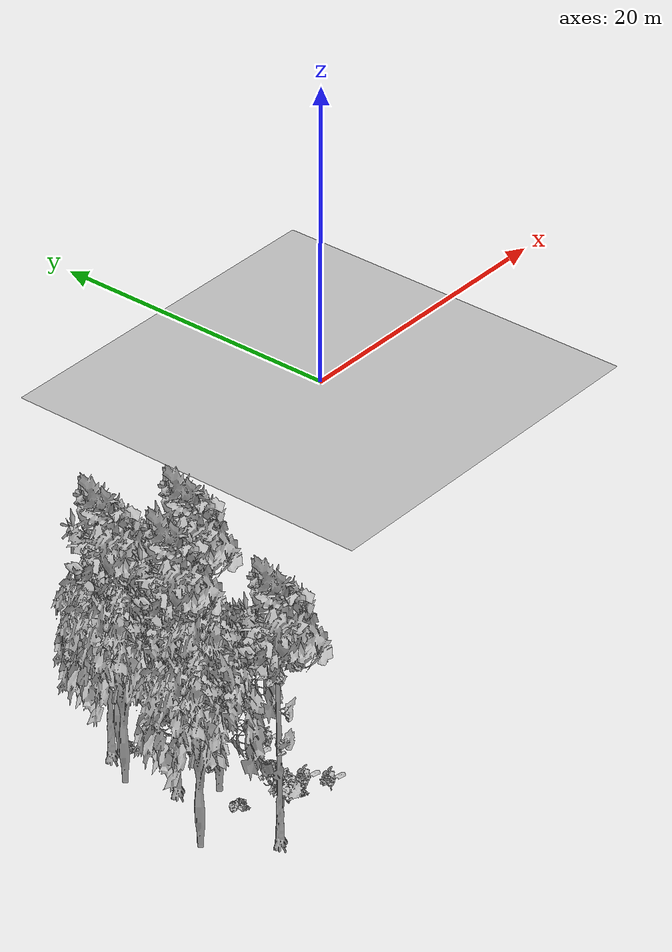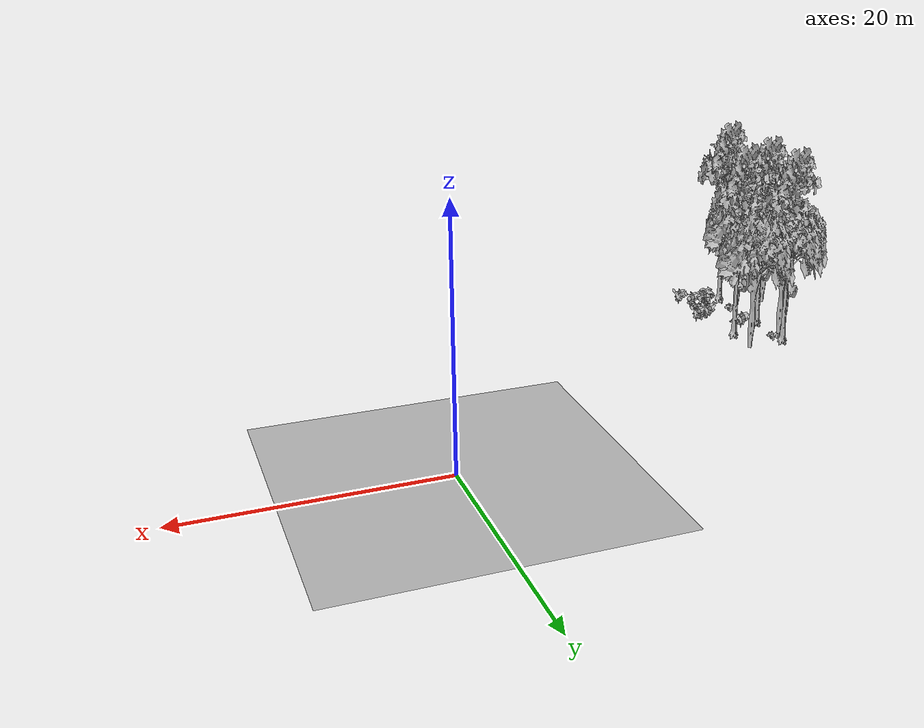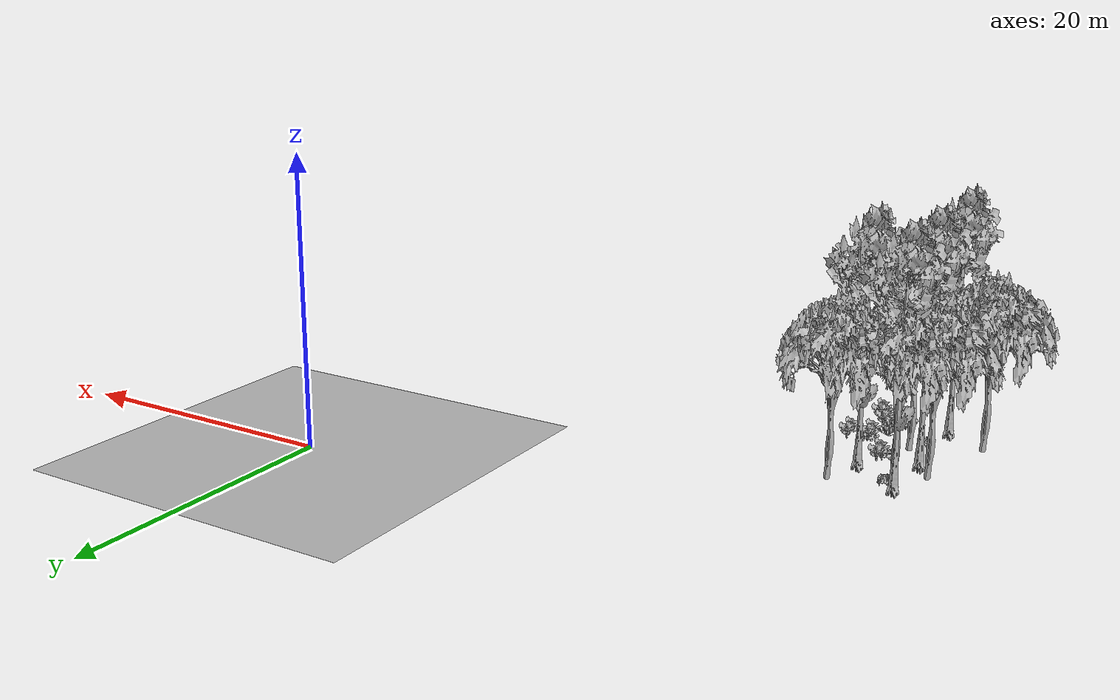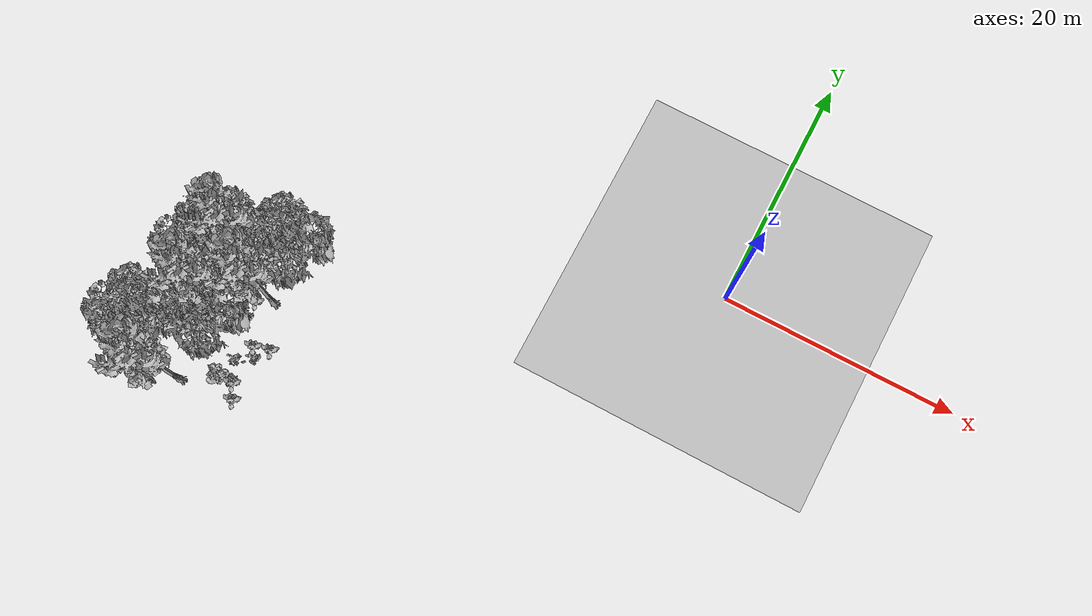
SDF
<sdf version="1.7">
 <world name="default">
  <model name="ground_plane">
   <static>1</static>
   <link name="link">
    <collision name="collision">
     <pose>-50 0 0 0 -0 0</pose>
     <geometry><plane><normal>0 0 1</normal><size>80 80</size></plane></geometry>
     <surface><contact><ode><min_depth>0.01</min_depth><max_vel>0</max_vel></ode></contact></surface>
    </collision>
    <visual name="grass">
     <cast_shadows>0</cast_shadows>
     <geometry>
      <mesh>
       <scale>0.46714285714285714 0.46714285714285714 0.1</scale>
       <uri>file://grass_plane/meshes/grass_plane.dae</uri>
      </mesh>
     </geometry>
    </visual>
   </link>
  </model>
  <model name="Tree 99">
   <static>1</static>
   <pose>-38.54059134746807 -23.495840534642667 0 1.57079 -0 0</pose>
   <link name="link">
    <collision name="collision">
     <geometry><mesh><scale>3.5 5 3.5</scale><uri>model://tree_2/meshes/tree_2.obj</uri></mesh></geometry>
    </collision>
    <visual name="visual">
     <geometry><mesh><scale>3.5 5 3.5</scale><uri>model://tree_2/meshes/tree_2.obj</uri></mesh></geometry>
    </visual>
   </link>
  </model>
  <model name="Tree 106">
   <static>1</static>
   <pose>-31.954167852705275 -17.431816246076863 0 1.57079 -0 0</pose>
   <link name="link">
    <collision name="collision">
     <geometry><mesh><scale>3.5 5 3.5</scale><uri>model://tree_9/meshes/tree_9.obj</uri></mesh></geometry>
    </collision>
    <visual name="visual">
     <geometry><mesh><scale>3.5 5 3.5</scale><uri>model://tree_9/meshes/tree_9.obj</uri></mesh></geometry>
    </visual>
   </link>
  </model>
  <model name="Tree 136">
   <static>1</static>
   <pose>-36.88093246816274 -16.863602138649874 0 1.57079 -0 0</pose>
   <link name="link">
    <collision name="collision">
     <geometry><mesh><scale>3.5 5 3.5</scale><uri>model://tree_2/meshes/tree_2.obj</uri></mesh></geometry>
    </collision>
    <visual name="visual">
     <geometry><mesh><scale>3.5 5 3.5</scale><uri>model://tree_2/meshes/tree_2.obj</uri></mesh></geometry>
    </visual>
   </link>
  </model>
  <model name="Tree 139">
   <static>1</static>
   <pose>-31.42378389846872 -13.557888857395586 0 1.57079 -0 0</pose>
   <link name="link">
    <collision name="collision">
     <geometry><mesh><scale>3.5 5 3.5</scale><uri>model://tree_2/meshes/tree_2.obj</uri></mesh></geometry>
    </collision>
    <visual name="visual">
     <geometry><mesh><scale>3.5 5 3.5</scale><uri>model://tree_2/meshes/tree_2.obj</uri></mesh></geometry>
    </visual>
   </link>
  </model>
  <model name="Tree 225">
   <static>1</static>
   <pose>-35.45798240890298 -19.33298739851817 0 1.57079 -0 0</pose>
   <link name="link">
    <collision name="collision">
     <geometry><mesh><scale>3.5 5 3.5</scale><uri>model://tree_9/meshes/tree_9.obj</uri></mesh></geometry>
    </collision>
    <visual name="visual">
     <geometry><mesh><scale>3.5 5 3.5</scale><uri>model://tree_9/meshes/tree_9.obj</uri></mesh></geometry>
    </visual>
   </link>
  </model>
  <model name="Tree 373">
   <static>1</static>
   <pose>-35.346135024514545 -26.250710447009293 0 1.57079 -0 0</pose>
   <link name="link">
    <collision name="collision">
     <geometry><mesh><scale>3.5 5 3.5</scale><uri>model://tree_9/meshes/tree_9.obj</uri></mesh></geometry>
    </collision>
    <visual name="visual">
     <geometry><mesh><scale>3.5 5 3.5</scale><uri>model://tree_9/meshes/tree_9.obj</uri></mesh></geometry>
    </visual>
   </link>
  </model>
  <model name="Tree 443">
   <static>1</static>
   <pose>-35.318299350104525 -14.594993818277302 0 1.57079 -0 0</pose>
   <link name="link">
    <collision name="collision">
     <geometry><mesh><scale>3.5 5 3.5</scale><uri>model://tree_9/meshes/tree_9.obj</uri></mesh></geometry>
    </collision>
    <visual name="visual">
     <geometry><mesh><scale>3.5 5 3.5</scale><uri>model://tree_9/meshes/tree_9.obj</uri></mesh></geometry>
    </visual>
   </link>
  </model>
  <model name="Tree 524">
   <static>1</static>
   <pose>-34.29166265837286 -21.161677320084145 0 1.57079 -0 0</pose>
   <link name="link">
    <collision name="collision">
     <geometry><mesh><scale>3.5 5 3.5</scale><uri>model://tree_2/meshes/tree_2.obj</uri></mesh></geometry>
    </collision>
    <visual name="visual">
     <geometry><mesh><scale>3.5 5 3.5</scale><uri>model://tree_2/meshes/tree_2.obj</uri></mesh></geometry>
    </visual>
   </link>
  </model>
  <model name="Tree 575">
   <static>1</static>
   <pose>-35.225571110421555 -15.05648995764605 0 1.57079 -0 0</pose>
   <link name="link">
    <collision name="collision">
     <geometry><mesh><scale>3.5 5 3.5</scale><uri>model://tree_2/meshes/tree_2.obj</uri></mesh></geometry>
    </collision>
    <visual name="visual">
     <geometry><mesh><scale>3.5 5 3.5</scale><uri>model://tree_2/meshes/tree_2.obj</uri></mesh></geometry>
    </visual>
   </link>
  </model>
  <model name="Bush 15">
   <static>1</static>
   <pose>-34.697487883747755 -15.12563348677493 0 1.57079 -0 0</pose>
   <link name="link">
    <collision name="collision">
     <geometry><mesh><scale>2 2 2</scale><uri>model://bush_2/meshes/bush_2.obj</uri></mesh></geometry>
     <surface><contact><collide_without_contact>false</collide_without_contact></contact></surface>
    </collision>
    <visual name="visual">
     <geometry><mesh><scale>2 2 2</scale><uri>model://bush_2/meshes/bush_2.obj</uri></mesh></geometry>
    </visual>
   </link>
  </model>
  <model name="Bush 32">
   <static>1</static>
   <pose>-32.77791130893037 -24.699842716965648 0 1.57079 -0 0</pose>
   <link name="link">
    <collision name="collision">
     <geometry><mesh><scale>2 2 2</scale><uri>model://bush_1/meshes/bush_1.obj</uri></mesh></geometry>
     <surface><contact><collide_without_contact>false</collide_without_contact></contact></surface>
    </collision>
    <visual name="visual">
     <geometry><mesh><scale>2 2 2</scale><uri>model://bush_1/meshes/bush_1.obj</uri></mesh></geometry>
    </visual>
   </link>
  </model>
  <model name="Bush 127">
   <static>1</static>
   <pose>-31.1521262112117 -22.046122875419787 0 1.57079 -0 0</pose>
   <link name="link">
    <collision name="collision">
     <geometry><mesh><scale>2 2 2</scale><uri>model://bush_2/meshes/bush_2.obj</uri></mesh></geometry>
     <surface><contact><collide_without_contact>false</collide_without_contact></contact></surface>
    </collision>
    <visual name="visual">
     <geometry><mesh><scale>2 2 2</scale><uri>model://bush_2/meshes/bush_2.obj</uri></mesh></geometry>
    </visual>
   </link>
  </model>
  <model name="Bush 146">
   <static>1</static>
   <pose>-32.14187233753887 -22.97423587794998 0 1.57079 -0 0</pose>
   <link name="link">
    <collision name="collision">
     <geometry><mesh><scale>2 2 2</scale><uri>model://bush_4/meshes/bush_4.obj</uri></mesh></geometry>
     <surface><contact><collide_without_contact>false</collide_without_contact></contact></surface>
    </collision>
    <visual name="visual">
     <geometry><mesh><scale>2 2 2</scale><uri>model://bush_4/meshes/bush_4.obj</uri></mesh></geometry>
    </visual>
   </link>
  </model>
  <model name="Bush 230">
   <static>1</static>
   <pose>-31.22835051705792 -24.57525086686922 0 1.57079 -0 0</pose>
   <link name="link">
    <collision name="collision">
     <geometry><mesh><scale>2 2 2</scale><uri>model://bush_0/meshes/bush_0.obj</uri></mesh></geometry>
     <surface><contact><collide_without_contact>false</collide_without_contact></contact></surface>
    </collision>
    <visual name="visual">
     <geometry><mesh><scale>2 2 2</scale><uri>model://bush_0/meshes/bush_0.obj</uri></mesh></geometry>
    </visual>
   </link>
  </model>
  <model name="Bush 254">
   <static>1</static>
   <pose>-30.537195831309702 -25.717172265824615 0 1.57079 -0 0</pose>
   <link name="link">
    <collision name="collision">
     <geometry><mesh><scale>2 2 2</scale><uri>model://bush_0/meshes/bush_0.obj</uri></mesh></geometry>
     <surface><contact><collide_without_contact>false</collide_without_contact></contact></surface>
    </collision>
    <visual name="visual">
     <geometry><mesh><scale>2 2 2</scale><uri>model://bush_0/meshes/bush_0.obj</uri></mesh></geometry>
    </visual>
   </link>
  </model>
  <model name="Bush 311">
   <static>1</static>
   <pose>-33.35813757648425 -19.414672078004756 0 1.57079 -0 0</pose>
   <link name="link">
    <collision name="collision">
     <geometry><mesh><scale>2 2 2</scale><uri>model://bush_2/meshes/bush_2.obj</uri></mesh></geometry>
     <surface><contact><collide_without_contact>false</collide_without_contact></contact></surface>
    </collision>
    <visual name="visual">
     <geometry><mesh><scale>2 2 2</scale><uri>model://bush_2/meshes/bush_2.obj</uri></mesh></geometry>
    </visual>
   </link>
  </model>
  <model name="Bush 378">
   <static>1</static>
   <pose>-31.85554363620595 -24.522003135170714 0 1.57079 -0 0</pose>
   <link name="link">
    <collision name="collision">
     <geometry><mesh><scale>2 2 2</scale><uri>model://bush_2/meshes/bush_2.obj</uri></mesh></geometry>
     <surface><contact><collide_without_contact>false</collide_without_contact></contact></surface>
    </collision>
    <visual name="visual">
     <geometry><mesh><scale>2 2 2</scale><uri>model://bush_2/meshes/bush_2.obj</uri></mesh></geometry>
    </visual>
   </link>
  </model>
  <model name="Bush 387">
   <static>1</static>
   <pose>-34.746255414692854 -22.94090766063033 0 1.57079 -0 0</pose>
   <link name="link">
    <collision name="collision">
     <geometry><mesh><scale>2 2 2</scale><uri>model://bush_2/meshes/bush_2.obj</uri></mesh></geometry>
     <surface><contact><collide_without_contact>false</collide_without_contact></contact></surface>
    </collision>
    <visual name="visual">
     <geometry><mesh><scale>2 2 2</scale><uri>model://bush_2/meshes/bush_2.obj</uri></mesh></geometry>
    </visual>
   </link>
  </model>
  <model name="Bush 445">
   <static>1</static>
   <pose>-33.002827131067896 -18.070073991343484 0 1.57079 -0 0</pose>
   <link name="link">
    <collision name="collision">
     <geometry><mesh><scale>2 2 2</scale><uri>model://bush_0/meshes/bush_0.obj</uri></mesh></geometry>
     <surface><contact><collide_without_contact>false</collide_without_contact></contact></surface>
    </collision>
    <visual name="visual">
     <geometry><mesh><scale>2 2 2</scale><uri>model://bush_0/meshes/bush_0.obj</uri></mesh></geometry>
    </visual>
   </link>
  </model>
  <model name="Bush 477">
   <static>1</static>
   <pose>-29.938014454724204 -20.91835060449812 0 1.57079 -0 0</pose>
   <link name="link">
    <collision name="collision">
     <geometry><mesh><scale>2 2 2</scale><uri>model://bush_0/meshes/bush_0.obj</uri></mesh></geometry>
     <surface><contact><collide_without_contact>false</collide_without_contact></contact></surface>
    </collision>
    <visual name="visual">
     <geometry><mesh><scale>2 2 2</scale><uri>model://bush_0/meshes/bush_0.obj</uri></mesh></geometry>
    </visual>
   </link>
  </model>
  <model name="Bush 547">
   <static>1</static>
   <pose>-31.28377653808093 -21.263458283638688 0 1.57079 -0 0</pose>
   <link name="link">
    <collision name="collision">
     <geometry><mesh><scale>2 2 2</scale><uri>model://bush_0/meshes/bush_0.obj</uri></mesh></geometry>
     <surface><contact><collide_without_contact>false</collide_without_contact></contact></surface>
    </collision>
    <visual name="visual">
     <geometry><mesh><scale>2 2 2</scale><uri>model://bush_0/meshes/bush_0.obj</uri></mesh></geometry>
    </visual>
   </link>
  </model>
  <model name="Bush 634">
   <static>1</static>
   <pose>-31.817677959405756 -24.402343558356627 0 1.57079 -0 0</pose>
   <link name="link">
    <collision name="collision">
     <geometry><mesh><scale>2 2 2</scale><uri>model://bush_2/meshes/bush_2.obj</uri></mesh></geometry>
     <surface><contact><collide_without_contact>false</collide_without_contact></contact></surface>
    </collision>
    <visual name="visual">
     <geometry><mesh><scale>2 2 2</scale><uri>model://bush_2/meshes/bush_2.obj</uri></mesh></geometry>
    </visual>
   </link>
  </model>
 </world>
</sdf>
